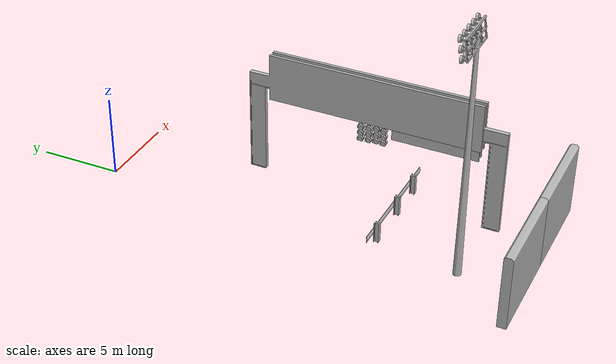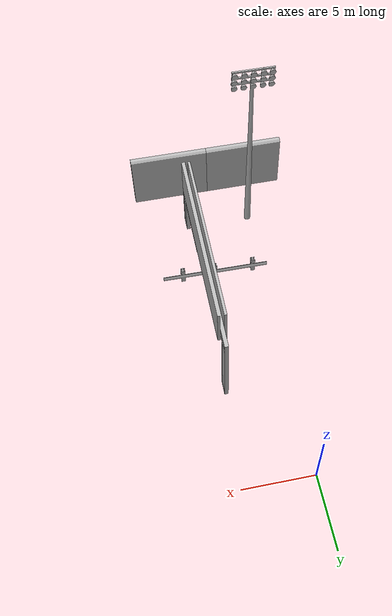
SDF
<sdf version="1.7">
 <world name="default">
  <model name="aws_robomaker_racetrack_Billboard_01">
   <frame name="aws_Billboard_01::__model__" attached_to="aws_Billboard_01::body">
    <pose relative_to="__model__">0 0 0 0 -0 0</pose>
   </frame>
   <link name="aws_Billboard_01::body">
    <pose relative_to="aws_Billboard_01::__model__">0 0 0 0 -0 0</pose>
    <inertial>
     <mass>1000</mass>
     <inertia><ixx>1</ixx><ixy>0</ixy><ixz>0</ixz><iyy>1</iyy><iyz>0</iyz><izz>1</izz></inertia>
    </inertial>
    <visual name="visual">
     <geometry>
      <mesh><uri>file://models/aws_robomaker_racetrack_Billboard_01/meshes/aws_Billboard_01_visual.DAE</uri></mesh>
     </geometry>
     <material><shader type="pixel"><normal_map>__default__</normal_map></shader></material>
     <meta><layer>2</layer></meta>
    </visual>
    <collision name="collision_0">
     <geometry>
      <mesh>
       <uri>file://models/aws_robomaker_racetrack_Billboard_01/meshes/aws_Billboard_01_collision.DAE</uri>
       <scale>1 1 1</scale>
      </mesh>
     </geometry>
     <surface>
      <friction>
       <ode><mu>1</mu><mu2>1</mu2><fdir1>0 0 0</fdir1><slip1>0</slip1><slip2>0</slip2></ode>
       <torsional>
        <coefficient>1</coefficient>
        <patch_radius>0</patch_radius>
        <surface_radius>0</surface_radius>
        <use_patch_radius>1</use_patch_radius>
        <ode><slip>0</slip></ode>
       </torsional>
      </friction>
      <bounce><restitution_coefficient>0</restitution_coefficient><threshold>1e+06</threshold></bounce>
      <contact>
       <collide_without_contact>0</collide_without_contact>
       <collide_without_contact_bitmask>1</collide_without_contact_bitmask>
       <collide_bitmask>1</collide_bitmask>
       <ode>
        <soft_cfm>0</soft_cfm>
        <soft_erp>0.2</soft_erp>
        <kp>1e+13</kp>
        <kd>1</kd>
        <max_vel>0.01</max_vel>
        <min_depth>0</min_depth>
       </ode>
       <bullet>
        <split_impulse>1</split_impulse>
        <split_impulse_penetration_threshold>-0.01</split_impulse_penetration_threshold>
        <soft_cfm>0</soft_cfm>
        <soft_erp>0.2</soft_erp>
        <kp>1e+13</kp>
        <kd>1</kd>
       </bullet>
      </contact>
     </surface>
    </collision>
   </link>
   <static>1</static>
   <pose>4.32789 -14.8431 -2e-06 0 1e-06 1.56416</pose>
  </model>
  <model name="aws_robomaker_racetrack_FenceMesh_01_01">
   <frame name="aws_FenceMesh_01::__model__" attached_to="aws_FenceMesh_01::body">
    <pose relative_to="__model__">0 0 0 0 -0 0</pose>
   </frame>
   <link name="aws_FenceMesh_01::body">
    <pose relative_to="aws_FenceMesh_01::__model__">0 0 0 0 -0 0</pose>
    <inertial>
     <mass>1</mass>
     <inertia><ixx>1</ixx><ixy>0</ixy><ixz>0</ixz><iyy>1</iyy><iyz>0</iyz><izz>1</izz></inertia>
    </inertial>
    <visual name="visual">
     <geometry>
      <mesh><uri>file://models/aws_robomaker_racetrack_FenceMesh_01/meshes/aws_FenceMesh_01_visual.DAE</uri></mesh>
     </geometry>
     <material><shader type="pixel"><normal_map>__default__</normal_map></shader></material>
     <meta><layer>2</layer></meta>
    </visual>
    <collision name="collision_0">
     <geometry>
      <mesh>
       <uri>file://models/aws_robomaker_racetrack_FenceMesh_01/meshes/aws_FenceMesh_01_collision.DAE</uri>
       <scale>1 1 1</scale>
      </mesh>
     </geometry>
     <surface>
      <friction>
       <ode><mu>1</mu><mu2>1</mu2><fdir1>0 0 0</fdir1><slip1>0</slip1><slip2>0</slip2></ode>
       <torsional>
        <coefficient>1</coefficient>
        <patch_radius>0</patch_radius>
        <surface_radius>0</surface_radius>
        <use_patch_radius>1</use_patch_radius>
        <ode><slip>0</slip></ode>
       </torsional>
      </friction>
      <bounce><restitution_coefficient>0</restitution_coefficient><threshold>1e+06</threshold></bounce>
      <contact>
       <collide_without_contact>0</collide_without_contact>
       <collide_without_contact_bitmask>1</collide_without_contact_bitmask>
       <collide_bitmask>2</collide_bitmask>
       <ode>
        <soft_cfm>0</soft_cfm>
        <soft_erp>0.2</soft_erp>
        <kp>1e+13</kp>
        <kd>1</kd>
        <max_vel>0.01</max_vel>
        <min_depth>0</min_depth>
       </ode>
       <bullet>
        <split_impulse>1</split_impulse>
        <split_impulse_penetration_threshold>-0.01</split_impulse_penetration_threshold>
        <soft_cfm>0</soft_cfm>
        <soft_erp>0.2</soft_erp>
        <kp>1e+13</kp>
        <kd>1</kd>
       </bullet>
      </contact>
     </surface>
    </collision>
   </link>
   <static>1</static>
   <pose>4.16406 -18.6269 5.05223 0 0 -0.006038</pose>
  </model>
  <model name="aws_robomaker_racetrack_FenceMesh_01_02">
   <frame name="aws_FenceMesh_01::__model__" attached_to="aws_FenceMesh_01::body">
    <pose relative_to="__model__">0 0 0 0 -0 0</pose>
   </frame>
   <link name="aws_FenceMesh_01::body">
    <pose relative_to="aws_FenceMesh_01::__model__">0 0 0 0 -0 0</pose>
    <inertial>
     <mass>1</mass>
     <inertia><ixx>1</ixx><ixy>0</ixy><ixz>0</ixz><iyy>1</iyy><iyz>0</iyz><izz>1</izz></inertia>
    </inertial>
    <visual name="visual">
     <geometry>
      <mesh><uri>file://models/aws_robomaker_racetrack_FenceMesh_01/meshes/aws_FenceMesh_01_visual.DAE</uri></mesh>
     </geometry>
     <material><shader type="pixel"><normal_map>__default__</normal_map></shader></material>
     <meta><layer>2</layer></meta>
    </visual>
    <collision name="collision_0">
     <geometry>
      <mesh>
       <uri>file://models/aws_robomaker_racetrack_FenceMesh_01/meshes/aws_FenceMesh_01_collision.DAE</uri>
       <scale>1 1 1</scale>
      </mesh>
     </geometry>
     <surface>
      <friction>
       <ode><mu>1</mu><mu2>1</mu2><fdir1>0 0 0</fdir1><slip1>0</slip1><slip2>0</slip2></ode>
       <torsional>
        <coefficient>1</coefficient>
        <patch_radius>0</patch_radius>
        <surface_radius>0</surface_radius>
        <use_patch_radius>1</use_patch_radius>
        <ode><slip>0</slip></ode>
       </torsional>
      </friction>
      <bounce><restitution_coefficient>0</restitution_coefficient><threshold>1e+06</threshold></bounce>
      <contact>
       <collide_without_contact>0</collide_without_contact>
       <collide_without_contact_bitmask>1</collide_without_contact_bitmask>
       <collide_bitmask>2</collide_bitmask>
       <ode>
        <soft_cfm>0</soft_cfm>
        <soft_erp>0.2</soft_erp>
        <kp>1e+13</kp>
        <kd>1</kd>
        <max_vel>0.01</max_vel>
        <min_depth>0</min_depth>
       </ode>
       <bullet>
        <split_impulse>1</split_impulse>
        <split_impulse_penetration_threshold>-0.01</split_impulse_penetration_threshold>
        <soft_cfm>0</soft_cfm>
        <soft_erp>0.2</soft_erp>
        <kp>1e+13</kp>
        <kd>1</kd>
       </bullet>
      </contact>
     </surface>
    </collision>
   </link>
   <static>1</static>
   <pose>4.63223 -18.6067 5.05223 0 0 -0.006038</pose>
  </model>
  <model name="aws_robomaker_racetrack_Fence_01_06">
   <frame name="aws_Fence_01::__model__" attached_to="aws_Fence_01::body">
    <pose relative_to="__model__">0 0 0 0 -0 0</pose>
   </frame>
   <link name="aws_Fence_01::body">
    <pose relative_to="aws_Fence_01::__model__">0 0 0 0 -0 0</pose>
    <inertial>
     <mass>5</mass>
     <inertia><ixx>1</ixx><ixy>0</ixy><ixz>0</ixz><iyy>1</iyy><iyz>0</iyz><izz>1</izz></inertia>
    </inertial>
    <visual name="visual">
     <geometry>
      <mesh><uri>file://models/aws_robomaker_racetrack_Fence_01/meshes/aws_Fence_01_visual.DAE</uri></mesh>
     </geometry>
     <material><shader type="pixel"><normal_map>__default__</normal_map></shader></material>
     <meta><layer>0</layer></meta>
    </visual>
    <collision name="collision_0">
     <geometry>
      <mesh>
       <uri>file://models/aws_robomaker_racetrack_Fence_01/meshes/aws_Fence_01_collision.DAE</uri>
       <scale>1 1 1</scale>
      </mesh>
     </geometry>
     <surface>
      <friction>
       <ode><mu>1</mu><mu2>1</mu2><fdir1>0 0 0</fdir1><slip1>0</slip1><slip2>0</slip2></ode>
       <torsional>
        <coefficient>1</coefficient>
        <patch_radius>0</patch_radius>
        <surface_radius>0</surface_radius>
        <use_patch_radius>1</use_patch_radius>
        <ode><slip>0</slip></ode>
       </torsional>
      </friction>
      <bounce><restitution_coefficient>0</restitution_coefficient><threshold>1e+06</threshold></bounce>
      <contact>
       <collide_without_contact>0</collide_without_contact>
       <collide_without_contact_bitmask>1</collide_without_contact_bitmask>
       <collide_bitmask>1</collide_bitmask>
       <ode>
        <soft_cfm>0</soft_cfm>
        <soft_erp>0.2</soft_erp>
        <kp>1e+13</kp>
        <kd>1</kd>
        <max_vel>0.01</max_vel>
        <min_depth>0</min_depth>
       </ode>
       <bullet>
        <split_impulse>1</split_impulse>
        <split_impulse_penetration_threshold>-0.01</split_impulse_penetration_threshold>
        <soft_cfm>0</soft_cfm>
        <soft_erp>0.2</soft_erp>
        <kp>1e+13</kp>
        <kd>1</kd>
       </bullet>
      </contact>
     </surface>
    </collision>
   </link>
   <static>1</static>
   <pose>3.24763 -16.8996 0.054 0 0 -1.58165</pose>
  </model>
  <model name="aws_robomaker_racetrack_RaceStartLight_01_00">
   <frame name="aws_RaceStartLight_01::__model__" attached_to="aws_RaceStartLight_01::body">
    <pose relative_to="__model__">0 0 0 0 -0 0</pose>
   </frame>
   <link name="aws_RaceStartLight_01::body">
    <pose relative_to="aws_RaceStartLight_01::__model__">0 0 0 0 -0 0</pose>
    <inertial>
     <mass>1</mass>
     <inertia><ixx>1</ixx><ixy>0</ixy><ixz>0</ixz><iyy>1</iyy><iyz>0</iyz><izz>1</izz></inertia>
    </inertial>
    <visual name="visual">
     <geometry>
      <mesh>
       <uri>file://models/aws_robomaker_racetrack_RaceStartLight_01/meshes/aws_RaceStartLight_01_visual.DAE</uri>
      </mesh>
     </geometry>
     <material><shader type="pixel"><normal_map>__default__</normal_map></shader></material>
     <meta><layer>2</layer></meta>
    </visual>
    <collision name="collision_1">
     <geometry>
      <mesh>
       <uri>file://models/aws_robomaker_racetrack_RaceStartLight_01/meshes/aws_RaceStartLight_01_collision.DAE</uri>
       <scale>1 1 1</scale>
      </mesh>
     </geometry>
     <surface>
      <friction>
       <ode><mu>1</mu><mu2>1</mu2><fdir1>0 0 0</fdir1><slip1>0</slip1><slip2>0</slip2></ode>
       <torsional>
        <coefficient>1</coefficient>
        <patch_radius>0</patch_radius>
        <surface_radius>0</surface_radius>
        <use_patch_radius>1</use_patch_radius>
        <ode><slip>0</slip></ode>
       </torsional>
      </friction>
      <bounce><restitution_coefficient>0</restitution_coefficient><threshold>1e+06</threshold></bounce>
      <contact>
       <collide_without_contact>0</collide_without_contact>
       <collide_without_contact_bitmask>1</collide_without_contact_bitmask>
       <collide_bitmask>2</collide_bitmask>
       <ode>
        <soft_cfm>0</soft_cfm>
        <soft_erp>0.2</soft_erp>
        <kp>1e+13</kp>
        <kd>1</kd>
        <max_vel>0.01</max_vel>
        <min_depth>0</min_depth>
       </ode>
       <bullet>
        <split_impulse>1</split_impulse>
        <split_impulse_penetration_threshold>-0.01</split_impulse_penetration_threshold>
        <soft_cfm>0</soft_cfm>
        <soft_erp>0.2</soft_erp>
        <kp>1e+13</kp>
        <kd>1</kd>
       </bullet>
      </contact>
     </surface>
    </collision>
   </link>
   <static>1</static>
   <pose>4.13359 -14.1692 5.08709 0 -0 0</pose>
  </model>
  <model name="aws_robomaker_racetrack_RaceStartLight_01_01">
   <frame name="aws_RaceStartLight_01::__model__" attached_to="aws_RaceStartLight_01::body">
    <pose relative_to="__model__">0 0 0 0 -0 0</pose>
   </frame>
   <link name="aws_RaceStartLight_01::body">
    <pose relative_to="aws_RaceStartLight_01::__model__">0 0 0 0 -0 0</pose>
    <inertial>
     <mass>1</mass>
     <inertia><ixx>1</ixx><ixy>0</ixy><ixz>0</ixz><iyy>1</iyy><iyz>0</iyz><izz>1</izz></inertia>
    </inertial>
    <visual name="visual">
     <geometry>
      <mesh>
       <uri>file://models/aws_robomaker_racetrack_RaceStartLight_01/meshes/aws_RaceStartLight_01_visual.DAE</uri>
      </mesh>
     </geometry>
     <material><shader type="pixel"><normal_map>__default__</normal_map></shader></material>
     <meta><layer>2</layer></meta>
    </visual>
    <collision name="collision_1">
     <geometry>
      <mesh>
       <uri>file://models/aws_robomaker_racetrack_RaceStartLight_01/meshes/aws_RaceStartLight_01_collision.DAE</uri>
       <scale>1 1 1</scale>
      </mesh>
     </geometry>
     <surface>
      <friction>
       <ode><mu>1</mu><mu2>1</mu2><fdir1>0 0 0</fdir1><slip1>0</slip1><slip2>0</slip2></ode>
       <torsional>
        <coefficient>1</coefficient>
        <patch_radius>0</patch_radius>
        <surface_radius>0</surface_radius>
        <use_patch_radius>1</use_patch_radius>
        <ode><slip>0</slip></ode>
       </torsional>
      </friction>
      <bounce><restitution_coefficient>0</restitution_coefficient><threshold>1e+06</threshold></bounce>
      <contact>
       <collide_without_contact>0</collide_without_contact>
       <collide_without_contact_bitmask>1</collide_without_contact_bitmask>
       <collide_bitmask>2</collide_bitmask>
       <ode>
        <soft_cfm>0</soft_cfm>
        <soft_erp>0.2</soft_erp>
        <kp>1e+13</kp>
        <kd>1</kd>
        <max_vel>0.01</max_vel>
        <min_depth>0</min_depth>
       </ode>
       <bullet>
        <split_impulse>1</split_impulse>
        <split_impulse_penetration_threshold>-0.01</split_impulse_penetration_threshold>
        <soft_cfm>0</soft_cfm>
        <soft_erp>0.2</soft_erp>
        <kp>1e+13</kp>
        <kd>1</kd>
       </bullet>
      </contact>
     </surface>
    </collision>
   </link>
   <static>1</static>
   <pose>4.14665 -14.6522 5.08709 0 -0 0</pose>
  </model>
  <model name="aws_robomaker_racetrack_RaceStartLight_01_02">
   <frame name="aws_RaceStartLight_01::__model__" attached_to="aws_RaceStartLight_01::body">
    <pose relative_to="__model__">0 0 0 0 -0 0</pose>
   </frame>
   <link name="aws_RaceStartLight_01::body">
    <pose relative_to="aws_RaceStartLight_01::__model__">0 0 0 0 -0 0</pose>
    <inertial>
     <mass>1</mass>
     <inertia><ixx>1</ixx><ixy>0</ixy><ixz>0</ixz><iyy>1</iyy><iyz>0</iyz><izz>1</izz></inertia>
    </inertial>
    <visual name="visual">
     <geometry>
      <mesh>
       <uri>file://models/aws_robomaker_racetrack_RaceStartLight_01/meshes/aws_RaceStartLight_01_visual.DAE</uri>
      </mesh>
     </geometry>
     <material><shader type="pixel"><normal_map>__default__</normal_map></shader></material>
     <meta><layer>2</layer></meta>
    </visual>
    <collision name="collision_1">
     <geometry>
      <mesh>
       <uri>file://models/aws_robomaker_racetrack_RaceStartLight_01/meshes/aws_RaceStartLight_01_collision.DAE</uri>
       <scale>1 1 1</scale>
      </mesh>
     </geometry>
     <surface>
      <friction>
       <ode><mu>1</mu><mu2>1</mu2><fdir1>0 0 0</fdir1><slip1>0</slip1><slip2>0</slip2></ode>
       <torsional>
        <coefficient>1</coefficient>
        <patch_radius>0</patch_radius>
        <surface_radius>0</surface_radius>
        <use_patch_radius>1</use_patch_radius>
        <ode><slip>0</slip></ode>
       </torsional>
      </friction>
      <bounce><restitution_coefficient>0</restitution_coefficient><threshold>1e+06</threshold></bounce>
      <contact>
       <collide_without_contact>0</collide_without_contact>
       <collide_without_contact_bitmask>1</collide_without_contact_bitmask>
       <collide_bitmask>2</collide_bitmask>
       <ode>
        <soft_cfm>0</soft_cfm>
        <soft_erp>0.2</soft_erp>
        <kp>1e+13</kp>
        <kd>1</kd>
        <max_vel>0.01</max_vel>
        <min_depth>0</min_depth>
       </ode>
       <bullet>
        <split_impulse>1</split_impulse>
        <split_impulse_penetration_threshold>-0.01</split_impulse_penetration_threshold>
        <soft_cfm>0</soft_cfm>
        <soft_erp>0.2</soft_erp>
        <kp>1e+13</kp>
        <kd>1</kd>
       </bullet>
      </contact>
     </surface>
    </collision>
   </link>
   <static>1</static>
   <pose>4.21676 -15.0918 5.08709 0 -0 0</pose>
  </model>
  <model name="aws_robomaker_racetrack_RaceStartLight_01_03">
   <frame name="aws_RaceStartLight_01::__model__" attached_to="aws_RaceStartLight_01::body">
    <pose relative_to="__model__">0 0 0 0 -0 0</pose>
   </frame>
   <link name="aws_RaceStartLight_01::body">
    <pose relative_to="aws_RaceStartLight_01::__model__">0 0 0 0 -0 0</pose>
    <inertial>
     <mass>1</mass>
     <inertia><ixx>1</ixx><ixy>0</ixy><ixz>0</ixz><iyy>1</iyy><iyz>0</iyz><izz>1</izz></inertia>
    </inertial>
    <visual name="visual">
     <geometry>
      <mesh>
       <uri>file://models/aws_robomaker_racetrack_RaceStartLight_01/meshes/aws_RaceStartLight_01_visual.DAE</uri>
      </mesh>
     </geometry>
     <material><shader type="pixel"><normal_map>__default__</normal_map></shader></material>
     <meta><layer>2</layer></meta>
    </visual>
    <collision name="collision_1">
     <geometry>
      <mesh>
       <uri>file://models/aws_robomaker_racetrack_RaceStartLight_01/meshes/aws_RaceStartLight_01_collision.DAE</uri>
       <scale>1 1 1</scale>
      </mesh>
     </geometry>
     <surface>
      <friction>
       <ode><mu>1</mu><mu2>1</mu2><fdir1>0 0 0</fdir1><slip1>0</slip1><slip2>0</slip2></ode>
       <torsional>
        <coefficient>1</coefficient>
        <patch_radius>0</patch_radius>
        <surface_radius>0</surface_radius>
        <use_patch_radius>1</use_patch_radius>
        <ode><slip>0</slip></ode>
       </torsional>
      </friction>
      <bounce><restitution_coefficient>0</restitution_coefficient><threshold>1e+06</threshold></bounce>
      <contact>
       <collide_without_contact>0</collide_without_contact>
       <collide_without_contact_bitmask>1</collide_without_contact_bitmask>
       <collide_bitmask>2</collide_bitmask>
       <ode>
        <soft_cfm>0</soft_cfm>
        <soft_erp>0.2</soft_erp>
        <kp>1e+13</kp>
        <kd>1</kd>
        <max_vel>0.01</max_vel>
        <min_depth>0</min_depth>
       </ode>
       <bullet>
        <split_impulse>1</split_impulse>
        <split_impulse_penetration_threshold>-0.01</split_impulse_penetration_threshold>
        <soft_cfm>0</soft_cfm>
        <soft_erp>0.2</soft_erp>
        <kp>1e+13</kp>
        <kd>1</kd>
       </bullet>
      </contact>
     </surface>
    </collision>
   </link>
   <static>1</static>
   <pose>4.17594 -15.5526 5.08709 0 -0 0</pose>
  </model>
  <model name="aws_robomaker_racetrack_Light_01_00">
   <frame name="aws_Light_01::__model__" attached_to="aws_Light_01::body">
    <pose relative_to="__model__">0 0 0 0 -0 0</pose>
   </frame>
   <link name="aws_Light_01::body">
    <pose relative_to="aws_Light_01::__model__">0 0 0 0 -0 0</pose>
    <inertial>
     <mass>100</mass>
     <inertia><ixx>1</ixx><ixy>0</ixy><ixz>0</ixz><iyy>1</iyy><iyz>0</iyz><izz>1</izz></inertia>
    </inertial>
    <visual name="visual">
     <geometry>
      <mesh><uri>file://models/aws_robomaker_racetrack_Light_01/meshes/aws_Light_01_visual.DAE</uri></mesh>
     </geometry>
     <material><shader type="pixel"><normal_map>__default__</normal_map></shader></material>
     <meta><layer>0</layer></meta>
    </visual>
    <collision name="collision_0">
     <geometry>
      <mesh>
       <uri>file://models/aws_robomaker_racetrack_Light_01/meshes/aws_Light_01_collision.DAE</uri>
       <scale>1 1 1</scale>
      </mesh>
     </geometry>
     <surface>
      <friction>
       <ode><mu>1</mu><mu2>1</mu2><fdir1>0 0 0</fdir1><slip1>0</slip1><slip2>0</slip2></ode>
       <torsional>
        <coefficient>1</coefficient>
        <patch_radius>0</patch_radius>
        <surface_radius>0</surface_radius>
        <use_patch_radius>1</use_patch_radius>
        <ode><slip>0</slip></ode>
       </torsional>
      </friction>
      <bounce><restitution_coefficient>0</restitution_coefficient><threshold>1e+06</threshold></bounce>
      <contact>
       <collide_without_contact>0</collide_without_contact>
       <collide_without_contact_bitmask>1</collide_without_contact_bitmask>
       <collide_bitmask>1</collide_bitmask>
       <ode>
        <soft_cfm>0</soft_cfm>
        <soft_erp>0.2</soft_erp>
        <kp>1e+13</kp>
        <kd>1</kd>
        <max_vel>0.01</max_vel>
        <min_depth>0</min_depth>
       </ode>
       <bullet>
        <split_impulse>1</split_impulse>
        <split_impulse_penetration_threshold>-0.01</split_impulse_penetration_threshold>
        <soft_cfm>0</soft_cfm>
        <soft_erp>0.2</soft_erp>
        <kp>1e+13</kp>
        <kd>1</kd>
       </bullet>
      </contact>
     </surface>
    </collision>
   </link>
   <static>1</static>
   <pose>-0.355802 -21.7691 0 0 -0 0</pose>
  </model>
  <model name="aws_robomaker_racetrack_Wall_01_15">
   <frame name="aws_Wall_01::__model__" attached_to="aws_Wall_01::body">
    <pose relative_to="__model__">0 0 0 0 -0 0</pose>
   </frame>
   <link name="aws_Wall_01::body">
    <pose relative_to="aws_Wall_01::__model__">0 0 0 0 -0 0</pose>
    <inertial>
     <mass>500</mass>
     <inertia><ixx>1</ixx><ixy>0</ixy><ixz>0</ixz><iyy>1</iyy><iyz>0</iyz><izz>1</izz></inertia>
    </inertial>
    <visual name="visual">
     <geometry>
      <mesh>
       <uri>file://models/aws_robomaker_racetrack_Wall_01/meshes/aws_Wall_01_visual.DAE</uri>
       <scale>2.59853 2.59853 2.59853</scale>
      </mesh>
     </geometry>
     <material><shader type="pixel"><normal_map>__default__</normal_map></shader></material>
     <meta><layer>1</layer></meta>
    </visual>
    <collision name="collision_0">
     <geometry>
      <mesh>
       <uri>file://models/aws_robomaker_racetrack_Wall_01/meshes/aws_Wall_01_collision.DAE</uri>
       <scale>2.59853 2.59853 2.59853</scale>
      </mesh>
     </geometry>
     <surface>
      <friction>
       <ode><mu>1</mu><mu2>1</mu2><fdir1>0 0 0</fdir1><slip1>0</slip1><slip2>0</slip2></ode>
       <torsional>
        <coefficient>1</coefficient>
        <patch_radius>0</patch_radius>
        <surface_radius>0</surface_radius>
        <use_patch_radius>1</use_patch_radius>
        <ode><slip>0</slip></ode>
       </torsional>
      </friction>
      <bounce><restitution_coefficient>0</restitution_coefficient><threshold>1e+06</threshold></bounce>
      <contact>
       <collide_without_contact>0</collide_without_contact>
       <collide_without_contact_bitmask>1</collide_without_contact_bitmask>
       <collide_bitmask>1</collide_bitmask>
       <ode>
        <soft_cfm>0</soft_cfm>
        <soft_erp>0.2</soft_erp>
        <kp>1e+13</kp>
        <kd>1</kd>
        <max_vel>0.01</max_vel>
        <min_depth>0</min_depth>
       </ode>
       <bullet>
        <split_impulse>1</split_impulse>
        <split_impulse_penetration_threshold>-0.01</split_impulse_penetration_threshold>
        <soft_cfm>0</soft_cfm>
        <soft_erp>0.2</soft_erp>
        <kp>1e+13</kp>
        <kd>1</kd>
       </bullet>
      </contact>
     </surface>
    </collision>
   </link>
   <static>1</static>
   <pose>-0.701372 -25.5056 0 0 -0 0</pose>
  </model>
  <model name="aws_robomaker_racetrack_Wall_01_16">
   <frame name="aws_Wall_01::__model__" attached_to="aws_Wall_01::body">
    <pose relative_to="__model__">0 0 0 0 -0 0</pose>
   </frame>
   <link name="aws_Wall_01::body">
    <pose relative_to="aws_Wall_01::__model__">0 0 0 0 -0 0</pose>
    <inertial>
     <mass>500</mass>
     <inertia><ixx>1</ixx><ixy>0</ixy><ixz>0</ixz><iyy>1</iyy><iyz>0</iyz><izz>1</izz></inertia>
    </inertial>
    <visual name="visual">
     <geometry>
      <mesh>
       <uri>file://models/aws_robomaker_racetrack_Wall_01/meshes/aws_Wall_01_visual.DAE</uri>
       <scale>2.59853 2.59853 2.59853</scale>
      </mesh>
     </geometry>
     <material><shader type="pixel"><normal_map>__default__</normal_map></shader></material>
     <meta><layer>1</layer></meta>
    </visual>
    <collision name="collision_0">
     <geometry>
      <mesh>
       <uri>file://models/aws_robomaker_racetrack_Wall_01/meshes/aws_Wall_01_collision.DAE</uri>
       <scale>2.59853 2.59853 2.59853</scale>
      </mesh>
     </geometry>
     <surface>
      <friction>
       <ode><mu>1</mu><mu2>1</mu2><fdir1>0 0 0</fdir1><slip1>0</slip1><slip2>0</slip2></ode>
       <torsional>
        <coefficient>1</coefficient>
        <patch_radius>0</patch_radius>
        <surface_radius>0</surface_radius>
        <use_patch_radius>1</use_patch_radius>
        <ode><slip>0</slip></ode>
       </torsional>
      </friction>
      <bounce><restitution_coefficient>0</restitution_coefficient><threshold>1e+06</threshold></bounce>
      <contact>
       <collide_without_contact>0</collide_without_contact>
       <collide_without_contact_bitmask>1</collide_without_contact_bitmask>
       <collide_bitmask>1</collide_bitmask>
       <ode>
        <soft_cfm>0</soft_cfm>
        <soft_erp>0.2</soft_erp>
        <kp>1e+13</kp>
        <kd>1</kd>
        <max_vel>0.01</max_vel>
        <min_depth>0</min_depth>
       </ode>
       <bullet>
        <split_impulse>1</split_impulse>
        <split_impulse_penetration_threshold>-0.01</split_impulse_penetration_threshold>
        <soft_cfm>0</soft_cfm>
        <soft_erp>0.2</soft_erp>
        <kp>1e+13</kp>
        <kd>1</kd>
       </bullet>
      </contact>
     </surface>
    </collision>
   </link>
   <static>1</static>
   <pose>5.12343 -25.507 0 0 -0 0</pose>
  </model>
  <model name="ground_plane">
   <pose>0 0 -6.83581e+06 0 -0 0</pose>
   <link name="link">
    <pose>0 0 -1 0 -0 0</pose>
    <inertial>
     <inertia><ixx>1</ixx><ixy>0</ixy><ixz>0</ixz><iyy>1</iyy><iyz>0</iyz><izz>1</izz></inertia>
     <mass>1</mass>
    </inertial>
    <velocity>0 0 0 0 -0 0</velocity>
    <acceleration>0 0 0 0 -0 0</acceleration>
   </link>
   <scale>1 1 1</scale>
  </model>
 </world>
</sdf>
